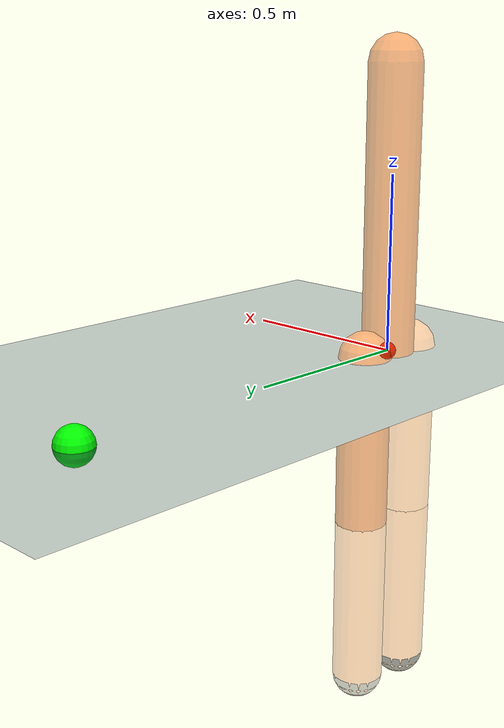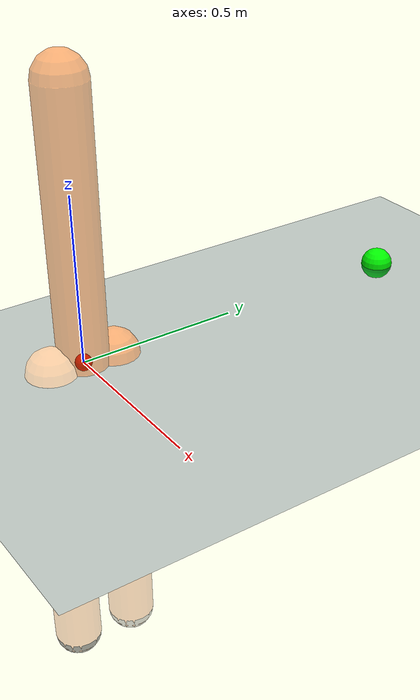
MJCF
<?xml version="1.0" encoding="utf-8"?>
<mujoco model="biped">

	<!-- Simulation Parameters -->
	<option timestep="0.001" iterations="15" ls_iterations="15" solver="Newton" gravity="0 0 -9.81">
		<flag eulerdamp="disable"/>
	</option>

	<!-- Specify the light settings -->
	<visual>
		<headlight diffuse="0.6 0.6 0.6" ambient="0.3 0.3 0.3" specular="0 0 0"/>
		<rgba haze="0.15 0.25 0.35 1"/>
		<global azimuth="150" elevation="-20" offwidth="720" offheight="480"/>
	</visual>

	<!-- Ground plane -->
	<asset>
        <texture type="skybox" builtin="gradient" rgb1="0.3 0.5 0.7" rgb2="0 0 0" width="512" height="3072"/>
        <texture type="2d" name="groundplane" builtin="checker" mark="edge" rgb1="0.2 0.3 0.4" rgb2="0.1 0.2 0.3"
        markrgb="0.8 0.8 0.8" width="300" height="300"/>
        <material name="groundplane" texture="groundplane" texuniform="true" texrepeat="1 1" reflectance="0.5"/> <!-- smallest checker square is 1 meter big-->
    </asset>

	<!-- Set angles to be in radians -->
	<compiler angle="radian" autolimits="true" eulerseq="zyx"/>

    <!-- Default properties -->
	<default>
		<geom conaffinity="0" contype="0" density="100" friction="0.8 0.8 0.8"/>
		<default class="visual">
			<geom conaffinity="0" contype="0"/>
		</default>
	</default>

	<!-- Bodies -->
	<worldbody>
		<!-- Ground -->
		<geom name="plane" type="plane" size="0.0 0.0 0.125" material="groundplane"  conaffinity="1" contype="1"/>

		<!-- Origin Visual -->
		<geom name="origin_sphere" type="sphere" size="0.025" pos="0 0 0" rgba="1 0 0 1" conaffinity="0" contype="0"/>

		<!-- COM Visual -->
		<geom name="com_vis" type="sphere" size="0.05" rgba="0 1 0 1" pos="0 1.1 0"/>
		<geom name="left_vis" type="sphere" size="0.05" rgba="0 0 1 1" pos="0 1.1 0"/>
		<geom name="right_vis" type="sphere" size="0.05" rgba="1 0 0 1" pos="0 1.1 0"/>

		<!-- Robot -->
		<body name="torso" pos="0 0 0.0">

			<!-- A light that tracks the CoM -->
			<light pos="0 0 3" dir="0 0 -1" directional="false" mode="trackcom"/>

			<!-- torso -->
			<geom name="torso" type="capsule" size="0.075 0.4" pos="0 0 0.4" rgba="1.0 0.424 0.047 0.5" conaffinity="1" contype="1" density="500"/> <!-- WARNING: if you change this length, you need to change the values in the controller -->
			<joint name="root_x" type="slide" axis="1  0 0"/>  <!-- Floating Base  x pos-->
			<joint name="root_z" type="slide" axis="0  0 1"/>  <!-- Floating Base  z pos-->
			<joint name="root_y" type="hinge" axis="0 -1 0"/>  <!-- Floating Base  y angle-->

				<!-- left thigh -->
				<body name="thigh_left" pos="0 0.1 0.0">
					<geom name="thigh_left" type="capsule" size="0.075 0.25" pos="0 0 -0.25" rgba="1.0 0.424 0.047 0.5" density="125"/> <!-- WARNING: if you change this length, you need to change the values in the controller -->
					<joint name="hip_left" axis="0 -1 0" pos="0 0 0.0" limited="true" range="-2.0 2.0" damping="1.0"/>

					<!-- left shin -->
					<body name="shin_left" pos="0 0 -0.5">
						<geom name="shin_left" type="capsule" size="0.075 0.25" pos="0 0 -0.25" rgba="1.0 0.424 0.047 0.3" density="125"/> <!-- WARNING: if you change this length, you need to change the values in the controller -->
						<joint name="knee_left" axis="0 -1 0" pos="0 0 0.0" limited="true" range="-2.0 -0.1" damping="1.0"/>

						<!-- left foot geom -->
						<geom name="foot_left" type="sphere" size="0.075" pos="0 0.0 -0.5" rgba="0.2 0.2 0.2 0.3" conaffinity="1" contype="1"  friction="1.5 1.5 1.5"/>

					</body>
				</body>

				<!-- right thigh -->
				<body name="thigh_right" pos="0 -0.1 0.0">
					<geom name="thigh_right" type="capsule" size="0.075 0.25" pos="0 0 -0.25" rgba="1.0 0.424 0.047 0.3" density="125"/> <!-- WARNING: if you change this length, you need to change the values in the controller -->
					<joint name="hip_right" axis="0 -1 0" pos="0 0 0.0" limited="true" range="-2.0 2.0" damping="1.0"/>

					<!-- right shin -->
					<body name="shin_right" pos="0 0 -0.5">
						<geom name="shin_right" type="capsule" size="0.075 0.25" pos="0 0 -0.25" rgba="1.0 0.424 0.047 0.3" density="125"/> <!-- WARNING: if you change this length, you need to change the values in the controller -->
						<joint name="knee_right" axis="0 -1 0" pos="0 0 0.0" limited="true" range="-2.0 -0.1" damping="1.0"/>

						<!-- right foot geom -->
						<geom name="foot_right" type="sphere" size="0.075" pos="0 0 -0.5" rgba="0.2 0.2 0.2 0.5" conaffinity="1" contype="1"  friction="1.5 1.5 1.5"/>

					</body>
				</body>
		</body>

	</worldbody>

	<!-- actuators -->
	<actuator>
		<motor name="hip_left_motor" joint="hip_left" ctrllimited="false" gear="1"/>
    	<motor name="knee_left_motor" joint="knee_left" ctrllimited="false" gear="1"/>
		<motor name="hip_right_motor" joint="hip_right" ctrllimited="false" gear="1"/>
		<motor name="knee_right_motor" joint="knee_right" ctrllimited="false" gear="1"/>
	</actuator>

</mujoco>
